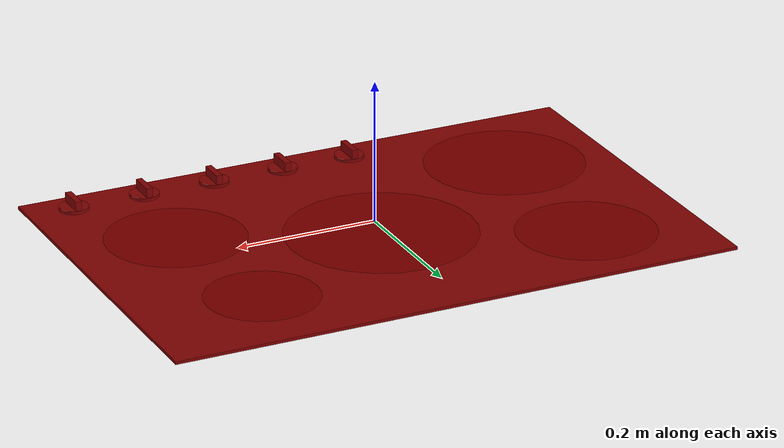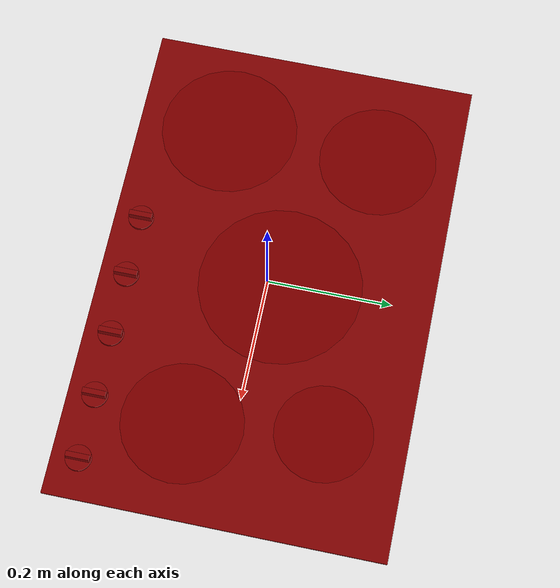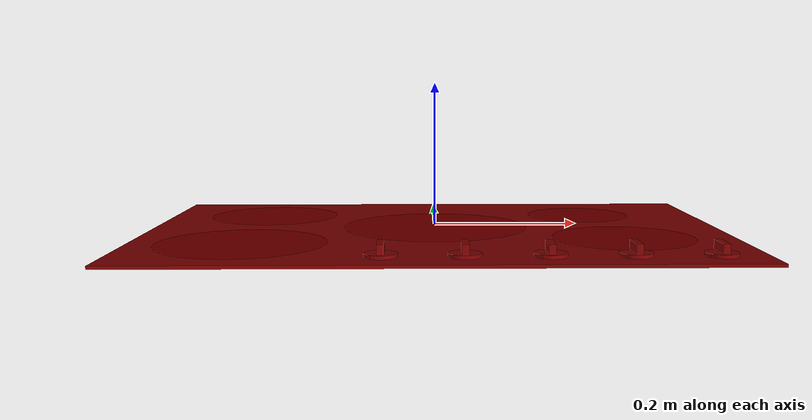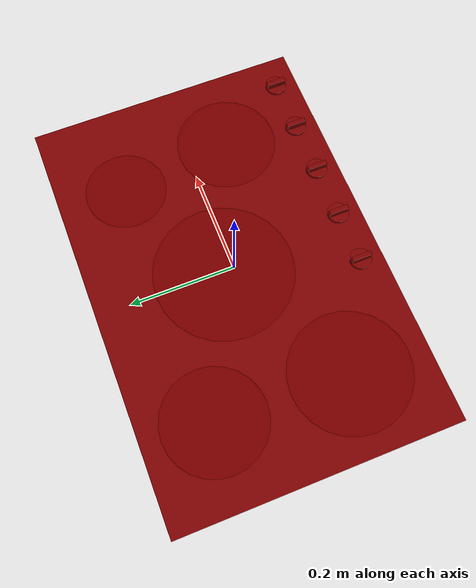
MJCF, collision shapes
<?xml version='1.0' encoding='UTF-8'?>
<mujoco model="model">
  <option timestep="0.002" gravity="0.0 0.0 -9.81"/>
  <compiler angle="radian"/>
  <asset>
    <mesh file="visuals/knob_center.obj" name="knob_center_vis"/>
    <mesh file="visuals/knob_front_left.obj" name="knob_front_left_vis"/>
    <mesh file="visuals/knob_front_right.obj" name="knob_front_right_vis"/>
    <mesh file="visuals/knob_rear_left.obj" name="knob_rear_left_vis"/>
    <mesh file="visuals/knob_rear_right.obj" name="knob_rear_right_vis"/>
    <mesh file="visuals/Body001.obj" name="Body001_vis"/>
    <texture file="visuals/T_BC001.png" name="Body001_material" type="2d"/>
    <material name="Body001_material" rgba="1 1 1 1.0" texture="Body001_material" shininess="0.1" specular="6"/>
    <texture file="visuals/T_BC001.png" name="knob_center_material" type="2d"/>
    <material name="knob_center_material" rgba="1 1 1 1.0" texture="knob_center_material" shininess="0.1" specular="6"/>
    <texture file="visuals/T_BC001.png" name="knob_front_left_material" type="2d"/>
    <material name="knob_front_left_material" rgba="1 1 1 1.0" texture="knob_front_left_material" shininess="0.1" specular="6"/>
    <texture file="visuals/T_BC001.png" name="knob_front_right_material" type="2d"/>
    <material name="knob_front_right_material" rgba="1 1 1 1.0" texture="knob_front_right_material" shininess="0.1" specular="6"/>
    <texture file="visuals/T_BC001.png" name="knob_rear_left_material" type="2d"/>
    <material name="knob_rear_left_material" rgba="1 1 1 1.0" texture="knob_rear_left_material" shininess="0.1" specular="6"/>
    <texture file="visuals/T_BC001.png" name="knob_rear_right_material" type="2d"/>
    <material name="knob_rear_right_material" rgba="1 1 1 1.0" texture="knob_rear_right_material" shininess="0.1" specular="6"/>
  </asset>
  <default>
    <default class="visual">
      <geom conaffinity="0" contype="0" group="1" type="mesh"/>
    </default>
    <default class="collision">
      <geom group="0" rgba="0.5 0 0 0.5"/>
    </default>
    <default class="spawn">
      <geom group="0" rgba="1 1 1 0.5" contype="0" conaffinity="0"/>
      <site group="0" rgba="1 1 1 0.5"/>
    </default>
    <default class="region">
      <geom group="1" conaffinity="0" contype="0" rgba="0 1 0 0"/>
    </default>
  </default>
  <worldbody>
    <body>
      <body name="object">
        <geom mesh="Body001_vis" type="mesh" solimp="0.998 0.998 0.001" solref="0.001 1" friction="0.95 0.3 0.1" class="visual" material="Body001_material"/>
        <geom class="collision" type="box" pos="0.00053957 -0.00004403 -0.00927619" size="0.4036475718021393 0.2670837938785553 0.0021160796750336885" quat="1.0 0.0 0.0 0.0"/>
        <body name="knob_center">
          <joint axis="0.0 0.0 1.0" pos="0.13505122 -0.22372733 0.00148319" limited="true" name="knob_center_joint" range="0.0 3.141592653589793" type="hinge" damping="0.2" armature="0.01" frictionloss="1"/>
          <geom mesh="knob_center_vis" type="mesh" solimp="0.998 0.998 0.001" solref="0.001 1" friction="0.95 0.3 0.1" class="visual" material="knob_center_material"/>
          <geom class="collision" type="box" pos="0.13501778 -0.22374751 0.00516564" size="0.004347840789705515 0.018760010600090027 0.006951689254492521" quat="1.0 0.0 0.0 0.0" name="knob_center_main" friction="100 0.5 0.01"/>
          <geom class="collision" type="cylinder" pos="0.13512555 -0.22375976 -0.00315392" size="0.02065761387348175 0.0023114990908652544" quat="1.0 0.0 0.0 0.0" friction="100 0.5 0.01"/>
        </body>
        <body name="knob_front_left">
          <joint axis="0.0 0.0 1.0" pos="-0.06837389 -0.22372735 0.00148319" limited="true" name="knob_front_left_joint" range="0.0 3.141592653589793" type="hinge" damping="0.2" armature="0.01" frictionloss="1"/>
          <geom mesh="knob_front_left_vis" type="mesh" solimp="0.998 0.998 0.001" solref="0.001 1" friction="0.95 0.3 0.1" class="visual" material="knob_front_left_material"/>
          <geom class="collision" type="box" pos="-0.06853234 -0.22374751 0.00516564" size="0.004347840789705515 0.018760010600090027 0.006951689254492521" quat="1.0 0.0 0.0 0.0" name="knob_front_left_main" friction="100 0.5 0.01"/>
          <geom class="collision" type="cylinder" pos="-0.06818143 -0.22375976 -0.00315392" size="0.02065761387348175 0.0023114990908652544" quat="1.0 0.0 0.0 0.0" friction="100 0.5 0.01"/>
        </body>
        <body name="knob_front_right">
          <joint axis="0.0 0.0 1.0" pos="0.34118456 -0.22372733 0.00148319" limited="true" name="knob_front_right_joint" range="0.0 3.141592653589793" type="hinge" damping="0.2" armature="0.01" frictionloss="1"/>
          <geom mesh="knob_front_right_vis" type="mesh" solimp="0.998 0.998 0.001" solref="0.001 1" friction="0.95 0.3 0.1" class="visual" material="knob_front_right_material"/>
          <geom class="collision" type="box" pos="0.34105673 -0.22374751 0.00516564" size="0.004347840789705515 0.018760010600090027 0.006951689254492521" quat="1.0 0.0 0.0 0.0" name="knob_front_right_main" friction="100 0.5 0.01"/>
          <geom class="collision" type="cylinder" pos="0.34094676 -0.22375976 -0.00315392" size="0.02065761387348175 0.0023114990908652544" quat="1.0 0.0 0.0 0.0" friction="100 0.5 0.01"/>
        </body>
        <body name="knob_rear_left">
          <joint axis="0.0 0.0 1.0" pos="0.03298588 -0.22372733 0.00148319" limited="true" name="knob_rear_left_joint" range="0.0 3.141592653589793" type="hinge" damping="0.2" armature="0.01" frictionloss="1"/>
          <geom mesh="knob_rear_left_vis" type="mesh" solimp="0.998 0.998 0.001" solref="0.001 1" friction="0.95 0.3 0.1" class="visual" material="knob_rear_left_material"/>
          <geom class="collision" type="box" pos="0.03274806 -0.22374751 0.00516564" size="0.004347840789705515 0.018760010600090027 0.006951689254492521" quat="1.0 0.0 0.0 0.0" name="knob_rear_left_main" friction="100 0.5 0.01"/>
          <geom class="collision" type="cylinder" pos="0.03263119 -0.22375976 -0.00315392" size="0.02065761387348175 0.0023114990908652544" quat="1.0 0.0 0.0 0.0" friction="100 0.5 0.01"/>
        </body>
        <body name="knob_rear_right">
          <joint axis="0.0 0.0 1.0" pos="0.23816346 -0.22372733 0.00148319" limited="true" name="knob_rear_right_joint" range="0.0 3.141592653589793" type="hinge" damping="0.2" armature="0.01" frictionloss="1"/>
          <geom mesh="knob_rear_right_vis" type="mesh" solimp="0.998 0.998 0.001" solref="0.001 1" friction="0.95 0.3 0.1" class="visual" material="knob_rear_right_material"/>
          <geom class="collision" type="box" pos="0.23790371 -0.22374751 0.00516564" size="0.004347840789705515 0.018760010600090027 0.006951689254492521" quat="1.0 0.0 0.0 0.0" name="knob_rear_right_main" friction="100 0.5 0.01"/>
          <geom class="collision" type="cylinder" pos="0.23804982 -0.22375976 -0.00315392" size="0.02065761387348175 0.0023114990908652544" quat="1.0 0.0 0.0 0.0" friction="100 0.5 0.01"/>
        </body>
        <site type="cylinder" rgba="0.5 0 0 0.5" size="0.13213768601417542 0.0001" pos="0.00030494 0.02093612 -0.00709722" name="burner_on_center"/>
        <site type="cylinder" rgba="0.5 0 0 0.5" size="0.09655672311782837 0.0001" pos="-0.24804516 0.13400862 -0.00709722" name="burner_on_rear_left"/>
        <site type="cylinder" rgba="0.5 0 0 0.5" size="0.11245042085647583 0.0001" pos="-0.25452325 -0.11759745 -0.00709722" name="burner_on_front_left"/>
        <site type="cylinder" rgba="0.5 0 0 0.5" size="0.07762499153614044 0.0001" pos="0.22599290 0.13550612 -0.00709722" name="burner_on_rear_right"/>
        <site type="cylinder" rgba="0.5 0 0 0.5" size="0.09673098474740982 0.0001" pos="0.25351262 -0.08145939 -0.00709722" name="burner_on_front_right"/>
        <site name="burner_center_place_site" type="cylinder" rgba="0.5 0 0 0" size="0.13213768601417542 4.999999873689376e-05" pos="0.00030494 0.02093612 -0.00709722"/>
        <site name="burner_rear_left_place_site" type="cylinder" rgba="0.5 0 0 0" size="0.09655672311782837 4.999999873689376e-05" pos="-0.24804516 0.13400862 -0.00709722"/>
        <site name="burner_front_left_place_site" type="cylinder" rgba="0.5 0 0 0" size="0.11245042085647583 4.999999873689376e-05" pos="-0.25452325 -0.11759745 -0.00709722"/>
        <site name="burner_rear_right_place_site" type="cylinder" rgba="0.5 0 0 0" size="0.07762499153614044 4.999999873689376e-05" pos="0.22599290 0.13550612 -0.00709722"/>
        <site name="burner_front_right_place_site" type="cylinder" rgba="0.5 0 0 0" size="0.09673098474740982 4.999999873689376e-05" pos="0.25351262 -0.08145939 -0.00709722"/>
        <geom class="region" name="reg_main" type="box" pos="0.000163980000000008 -4.404999999998993e-05 -0.00927617" size="0.40554012 0.26808414999999997 0.0031160999999999997"/>
      </body>
    </body>
  </worldbody>
  <actuator>
    <motor name="knob_center_joint_actuator" joint="knob_center_joint" gear="10"/>
    <motor name="knob_front_left_joint_actuator" joint="knob_front_left_joint" gear="10"/>
    <motor name="knob_front_right_joint_actuator" joint="knob_front_right_joint" gear="10"/>
    <motor name="knob_rear_left_joint_actuator" joint="knob_rear_left_joint" gear="10"/>
    <motor name="knob_rear_right_joint_actuator" joint="knob_rear_right_joint" gear="10"/>
  </actuator>
</mujoco>
